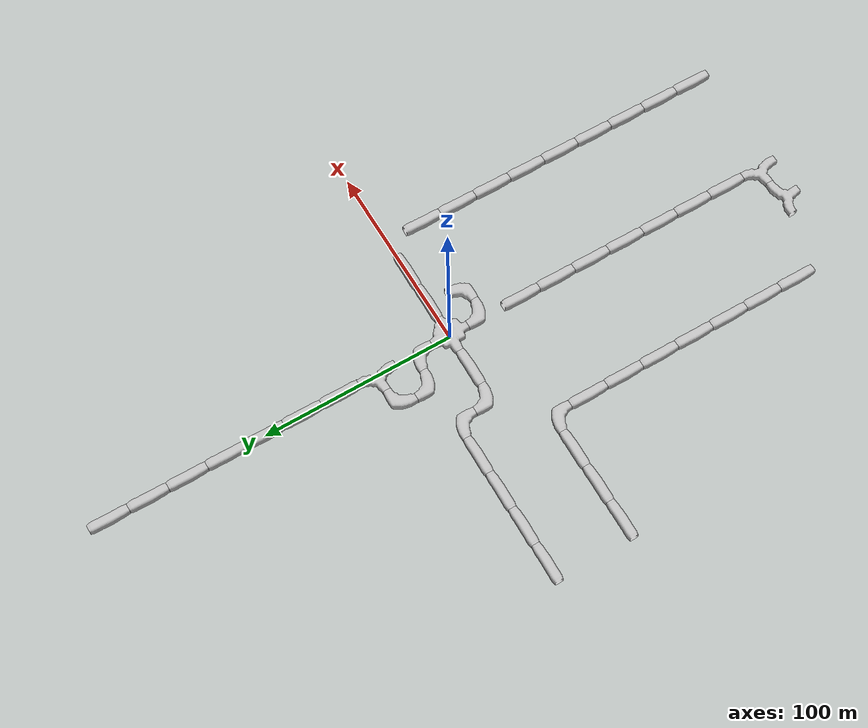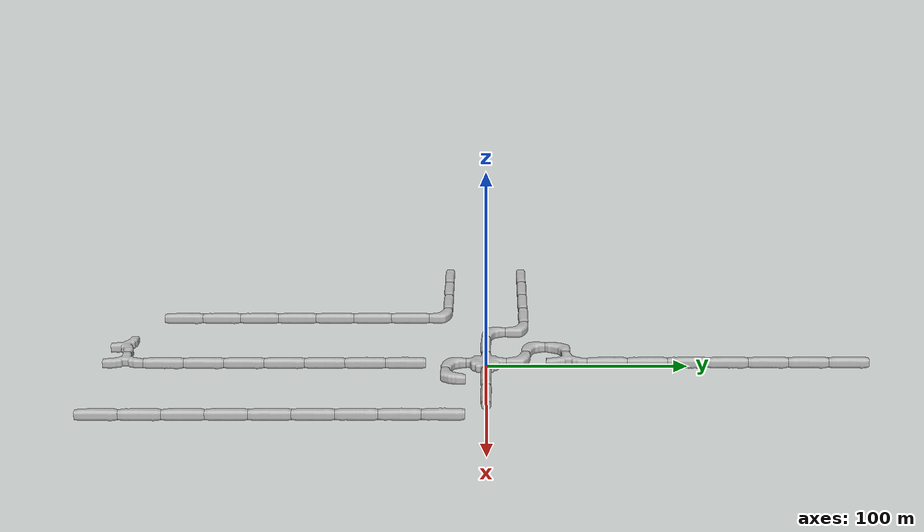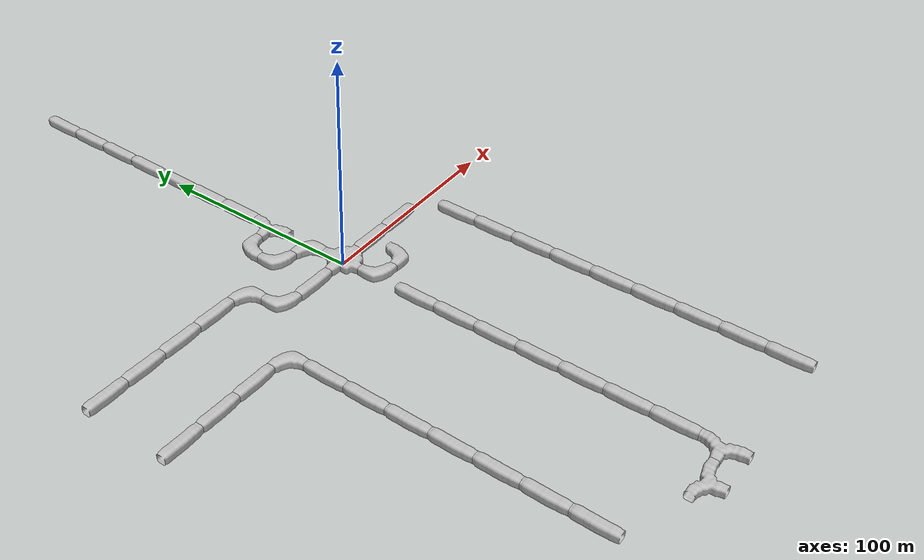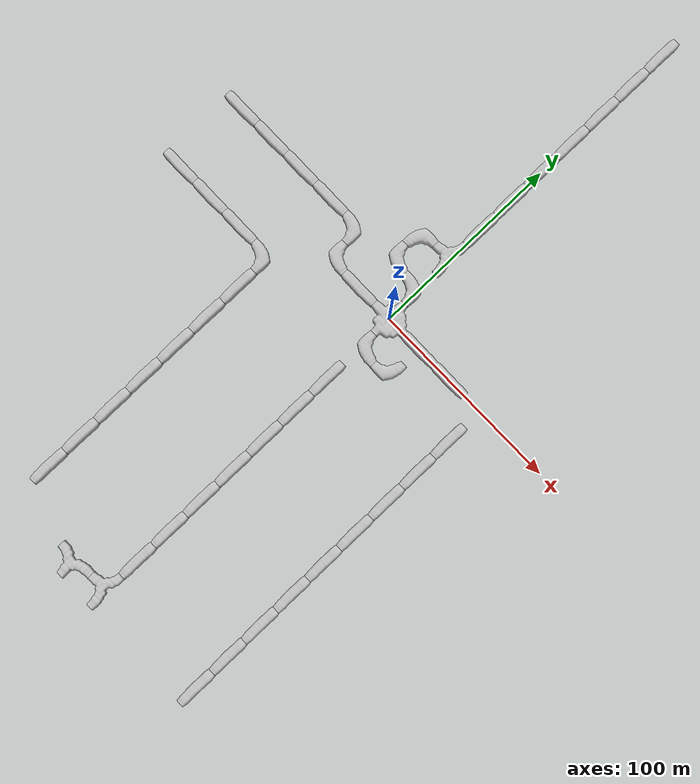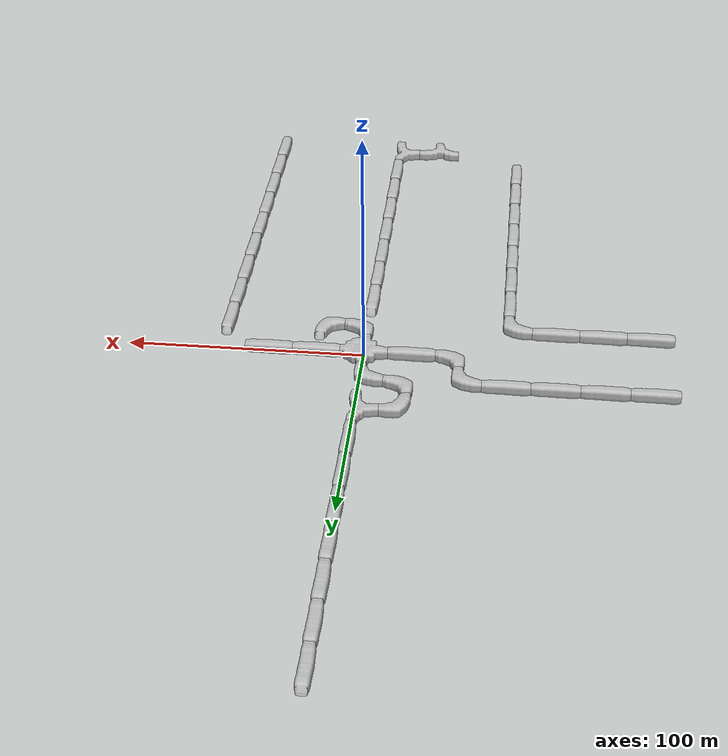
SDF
<sdf version="1.6">
 <world name="cave_16000_64">
  <include>
   <static>true</static>
   <name>cave_0_0</name>
   <pose>0 0 0 0 0 -1.5707963267948966</pose>
   <uri>model://cave_4way_20m</uri>
  </include>
  <include>
   <static>true</static>
   <name>cave_1_0</name>
   <pose>20 0 0 0 0 1.5707963267948966</pose>
   <uri>model://cave_straight_20m</uri>
  </include>
  <include>
   <static>true</static>
   <name>cave_2_0</name>
   <pose>40 0 0 0 0 1.5707963267948966</pose>
   <uri>model://cave_straight_20m</uri>
  </include>
  <include>
   <static>true</static>
   <name>cave_3_-1</name>
   <pose>60 -20 0 0 0 0.0</pose>
   <uri>model://cave_straight_20m</uri>
  </include>
  <include>
   <static>true</static>
   <name>cave_3_-2</name>
   <pose>60 -40 0 0 0 0.0</pose>
   <uri>model://cave_straight_20m</uri>
  </include>
  <include>
   <static>true</static>
   <name>cave_3_-3</name>
   <pose>60 -60 0 0 0 0.0</pose>
   <uri>model://cave_straight_20m</uri>
  </include>
  <include>
   <static>true</static>
   <name>cave_3_-4</name>
   <pose>60 -80 0 0 0 0.0</pose>
   <uri>model://cave_straight_20m</uri>
  </include>
  <include>
   <static>true</static>
   <name>cave_3_-5</name>
   <pose>60 -100 0 0 0 0.0</pose>
   <uri>model://cave_straight_20m</uri>
  </include>
  <include>
   <static>true</static>
   <name>cave_3_-6</name>
   <pose>60 -120 0 0 0 0.0</pose>
   <uri>model://cave_straight_20m</uri>
  </include>
  <include>
   <static>true</static>
   <name>cave_3_-7</name>
   <pose>60 -140 0 0 0 0.0</pose>
   <uri>model://cave_straight_20m</uri>
  </include>
  <include>
   <static>true</static>
   <name>cave_3_-8</name>
   <pose>60 -160 0 0 0 0.0</pose>
   <uri>model://cave_straight_20m</uri>
  </include>
  <include>
   <static>true</static>
   <name>cave_3_-9</name>
   <pose>60 -180 0 0 0 0.0</pose>
   <uri>model://cave_straight_20m</uri>
  </include>
  <include>
   <static>true</static>
   <name>cave_-1_-9</name>
   <pose>-20 -180 0 0 0 3.141592653589793</pose>
   <uri>model://cave_3way_20m</uri>
  </include>
  <include>
   <static>true</static>
   <name>cave_0_-9</name>
   <pose>0 -180 0 0 0 1.5707963267948966</pose>
   <uri>model://cave_3way_20m</uri>
  </include>
  <include>
   <static>true</static>
   <name>cave_0_-8</name>
   <pose>0 -160 0 0 0 0.0</pose>
   <uri>model://cave_straight_20m</uri>
  </include>
  <include>
   <static>true</static>
   <name>cave_0_-7</name>
   <pose>0 -140 0 0 0 0.0</pose>
   <uri>model://cave_straight_20m</uri>
  </include>
  <include>
   <static>true</static>
   <name>cave_0_-6</name>
   <pose>0 -120 0 0 0 0.0</pose>
   <uri>model://cave_straight_20m</uri>
  </include>
  <include>
   <static>true</static>
   <name>cave_0_-5</name>
   <pose>0 -100 0 0 0 0.0</pose>
   <uri>model://cave_straight_20m</uri>
  </include>
  <include>
   <static>true</static>
   <name>cave_0_-4</name>
   <pose>0 -80 0 0 0 0.0</pose>
   <uri>model://cave_straight_20m</uri>
  </include>
  <include>
   <static>true</static>
   <name>cave_0_-3</name>
   <pose>0 -60 0 0 0 0.0</pose>
   <uri>model://cave_straight_20m</uri>
  </include>
  <include>
   <static>true</static>
   <name>cave_0_-2</name>
   <pose>0 -40 0 0 0 0.0</pose>
   <uri>model://cave_straight_20m</uri>
  </include>
  <include>
   <static>true</static>
   <name>cave_-3_-8</name>
   <pose>-60 -160 0 0 0 0.0</pose>
   <uri>model://cave_straight_20m</uri>
  </include>
  <include>
   <static>true</static>
   <name>cave_-3_-7</name>
   <pose>-60 -140 0 0 0 0.0</pose>
   <uri>model://cave_straight_20m</uri>
  </include>
  <include>
   <static>true</static>
   <name>cave_-3_-6</name>
   <pose>-60 -120 0 0 0 0.0</pose>
   <uri>model://cave_straight_20m</uri>
  </include>
  <include>
   <static>true</static>
   <name>cave_-3_-5</name>
   <pose>-60 -100 0 0 0 0.0</pose>
   <uri>model://cave_straight_20m</uri>
  </include>
  <include>
   <static>true</static>
   <name>cave_-3_-4</name>
   <pose>-60 -80 0 0 0 0.0</pose>
   <uri>model://cave_straight_20m</uri>
  </include>
  <include>
   <static>true</static>
   <name>cave_-3_-3</name>
   <pose>-60 -60 0 0 0 0.0</pose>
   <uri>model://cave_straight_20m</uri>
  </include>
  <include>
   <static>true</static>
   <name>cave_-3_-2</name>
   <pose>-60 -40 0 0 0 0.0</pose>
   <uri>model://cave_straight_20m</uri>
  </include>
  <include>
   <static>true</static>
   <name>cave_-3_-1</name>
   <pose>-60 -20 0 0 0 3.141592653589793</pose>
   <uri>model://cave_L_20m</uri>
  </include>
  <include>
   <static>true</static>
   <name>cave_-4_-1</name>
   <pose>-80 -20 0 0 0 1.5707963267948966</pose>
   <uri>model://cave_straight_20m</uri>
  </include>
  <include>
   <static>true</static>
   <name>cave_-5_-1</name>
   <pose>-100 -20 0 0 0 1.5707963267948966</pose>
   <uri>model://cave_straight_20m</uri>
  </include>
  <include>
   <static>true</static>
   <name>cave_-6_-1</name>
   <pose>-120 -20 0 0 0 1.5707963267948966</pose>
   <uri>model://cave_straight_20m</uri>
  </include>
  <include>
   <static>true</static>
   <name>cave_0_-1</name>
   <pose>0 -20 0 0 0 0.0</pose>
   <uri>model://cave_L_20m</uri>
  </include>
  <include>
   <static>true</static>
   <name>cave_1_-1</name>
   <pose>20 -20 0 0 0 1.5707963267948966</pose>
   <uri>model://cave_L_20m</uri>
  </include>
  <include>
   <static>true</static>
   <name>cave_-1_0</name>
   <pose>-20 0 0 0 0 1.5707963267948966</pose>
   <uri>model://cave_straight_20m</uri>
  </include>
  <include>
   <static>true</static>
   <name>cave_-2_0</name>
   <pose>-40 0 0 0 0 0.0</pose>
   <uri>model://cave_L_20m</uri>
  </include>
  <include>
   <static>true</static>
   <name>cave_-2_1</name>
   <pose>-40 20 0 0 0 3.141592653589793</pose>
   <uri>model://cave_L_20m</uri>
  </include>
  <include>
   <static>true</static>
   <name>cave_-3_1</name>
   <pose>-60 20 0 0 0 1.5707963267948966</pose>
   <uri>model://cave_straight_20m</uri>
  </include>
  <include>
   <static>true</static>
   <name>cave_-4_1</name>
   <pose>-80 20 0 0 0 1.5707963267948966</pose>
   <uri>model://cave_straight_20m</uri>
  </include>
  <include>
   <static>true</static>
   <name>cave_-5_1</name>
   <pose>-100 20 0 0 0 1.5707963267948966</pose>
   <uri>model://cave_straight_20m</uri>
  </include>
  <include>
   <static>true</static>
   <name>cave_-6_1</name>
   <pose>-120 20 0 0 0 1.5707963267948966</pose>
   <uri>model://cave_straight_20m</uri>
  </include>
  <include>
   <static>true</static>
   <name>cave_0_1</name>
   <pose>0 20 0 0 0 3.141592653589793</pose>
   <uri>model://cave_L_20m</uri>
  </include>
  <include>
   <static>true</static>
   <name>cave_-1_1</name>
   <pose>-20 20 0 0 0 0.0</pose>
   <uri>model://cave_L_20m</uri>
  </include>
  <include>
   <static>true</static>
   <name>cave_-1_2</name>
   <pose>-20 40 0 0 0 -1.5707963267948966</pose>
   <uri>model://cave_L_20m</uri>
  </include>
  <include>
   <static>true</static>
   <name>cave_0_2</name>
   <pose>0 40 0 0 0 1.5707963267948966</pose>
   <uri>model://cave_3way_20m</uri>
  </include>
  <include>
   <static>true</static>
   <name>cave_0_3</name>
   <pose>0 60 0 0 0 0.0</pose>
   <uri>model://cave_straight_20m</uri>
  </include>
  <include>
   <static>true</static>
   <name>cave_0_4</name>
   <pose>0 80 0 0 0 0.0</pose>
   <uri>model://cave_straight_20m</uri>
  </include>
  <include>
   <static>true</static>
   <name>cave_0_5</name>
   <pose>0 100 0 0 0 0.0</pose>
   <uri>model://cave_straight_20m</uri>
  </include>
  <include>
   <static>true</static>
   <name>cave_0_6</name>
   <pose>0 120 0 0 0 0.0</pose>
   <uri>model://cave_straight_20m</uri>
  </include>
  <include>
   <static>true</static>
   <name>cave_0_7</name>
   <pose>0 140 0 0 0 0.0</pose>
   <uri>model://cave_straight_20m</uri>
  </include>
  <include>
   <static>true</static>
   <name>cave_0_8</name>
   <pose>0 160 0 0 0 0.0</pose>
   <uri>model://cave_straight_20m</uri>
  </include>
  <include>
   <static>true</static>
   <name>cave_0_9</name>
   <pose>0 180 0 0 0 0.0</pose>
   <uri>model://cave_straight_20m</uri>
  </include>
 </world>
</sdf>
